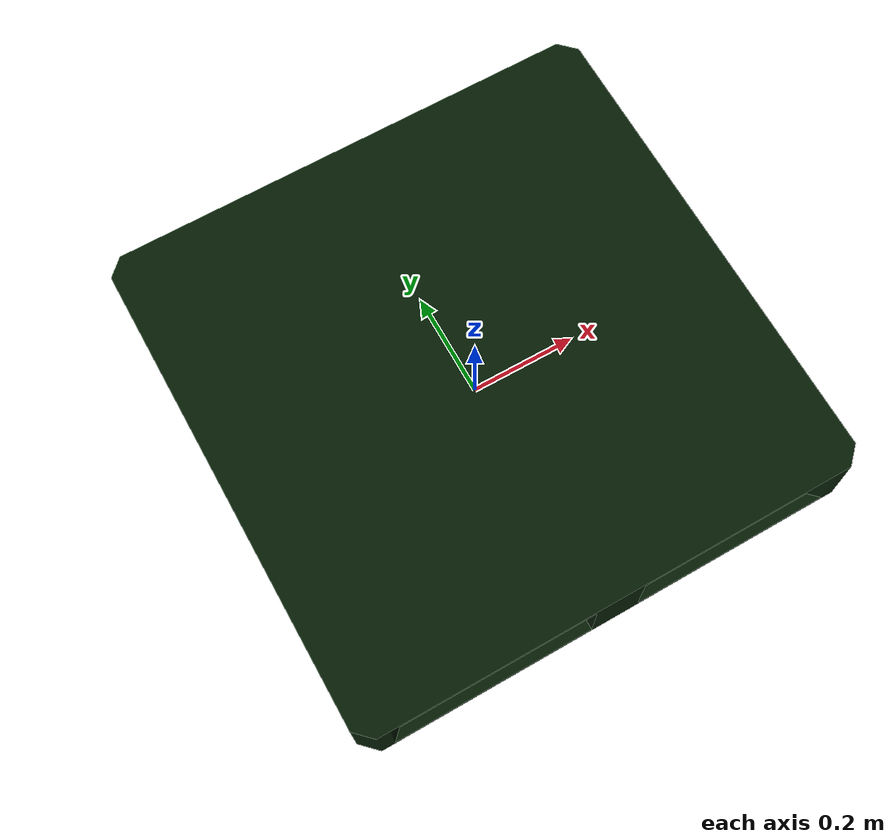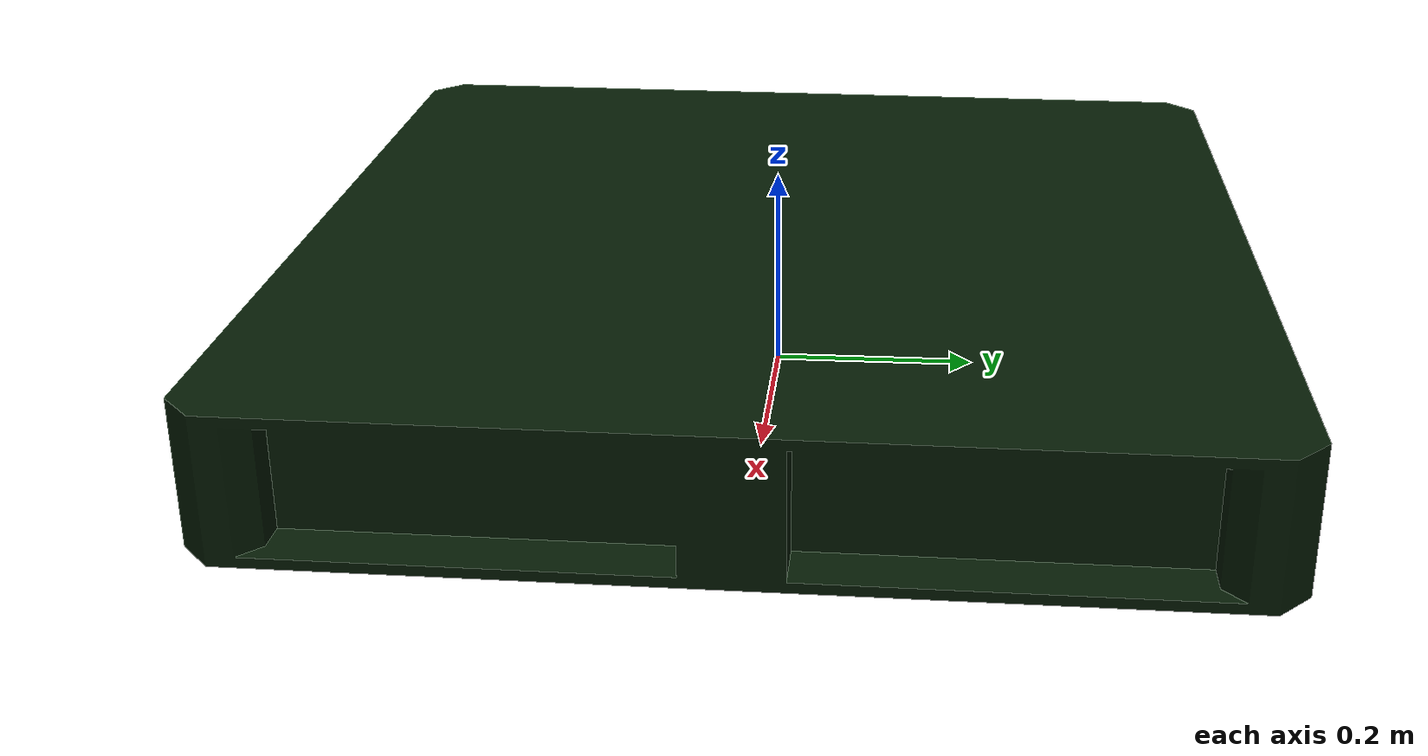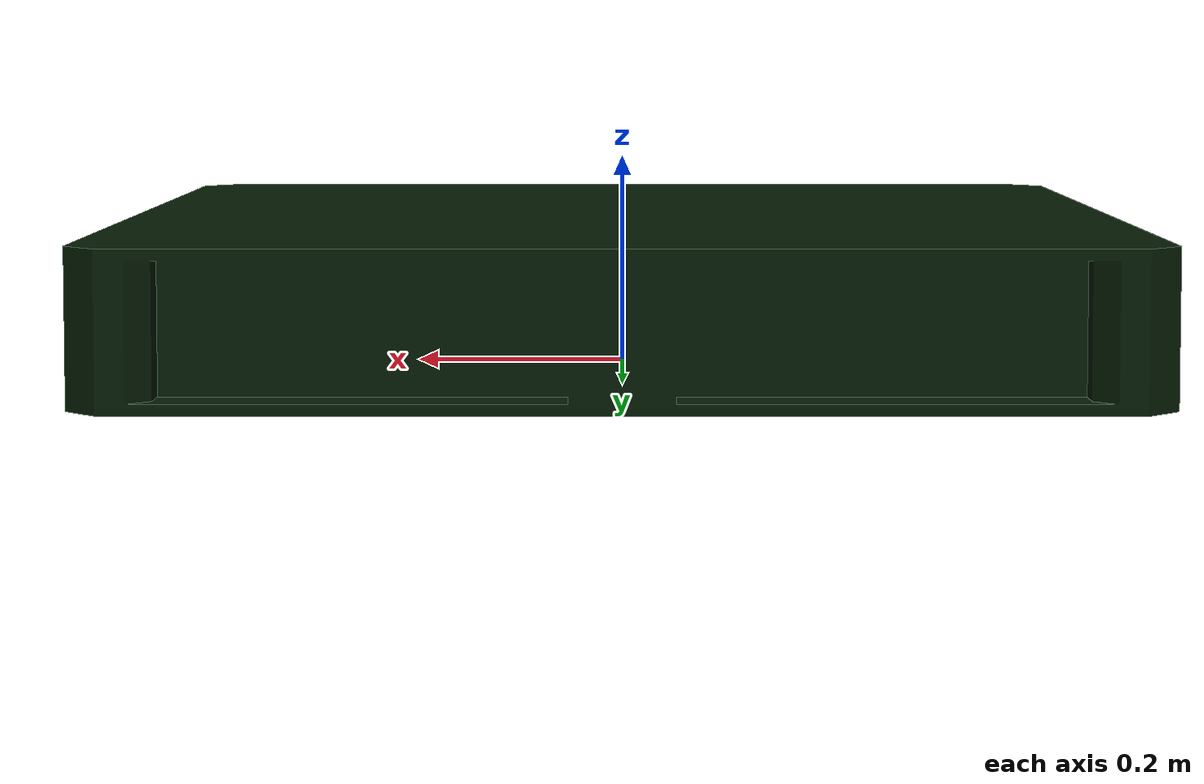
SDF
<?xml version="1.0" ?>
<sdf version="1.6">
  <model name="use_pallete">
    <link name="My_map">
      <inertial>
        <mass>0.1</mass>
      </inertial>
      <collision name="collision">
        <geometry>
          <mesh>
            <uri>model://use_pallete/meshes/use_pallete.dae</uri>
            <scale>0.01 0.01 0.01</scale>
          </mesh>
        </geometry>
      </collision>
      <visual name="map_visual">
        <geometry>
          <mesh>
            <uri>model://use_pallete/meshes/use_pallete.dae</uri>
            <scale>0.01 0.01 0.01</scale>
          </mesh>
        </geometry>
      </visual>
    </link>
  </model>
</sdf>
